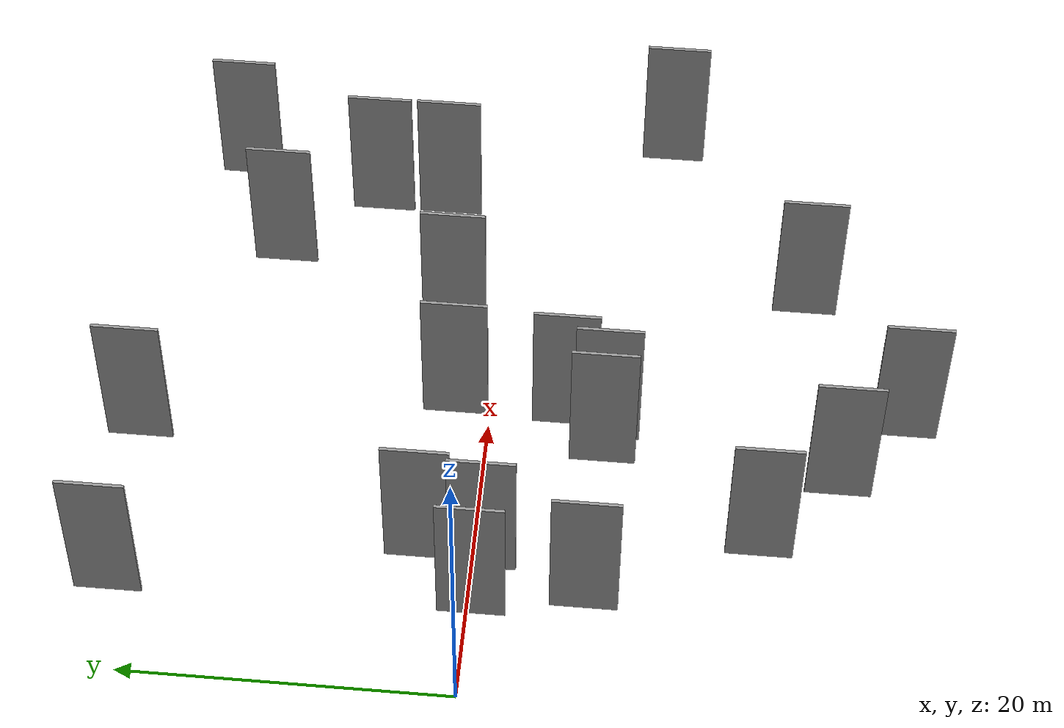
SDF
<sdf version="1.6">
 <world name="default">
  <scene>
   <sky><clouds><speed>12</speed></clouds></sky>
   <ambient>0.4 0.4 0.4 1</ambient>
   <background>0.7 0.7 0.7 1</background>
   <shadows>1</shadows>
  </scene>
  <gravity>0 0 -9.8066</gravity>
  <magnetic_field>6e-06 2.3e-05 -4.2e-05</magnetic_field>
  <physics default="0" name="default_physics" type="ode">
   <ode>
    <solver>
     <type>quick</type>
     <iters>10</iters>
     <sor>1.0</sor>
     <use_dynamic_moi_rescaling>0</use_dynamic_moi_rescaling>
    </solver>
    <constraints>
     <cfm>0</cfm>
     <erp>0.2</erp>
     <contact_max_correcting_vel>100</contact_max_correcting_vel>
     <contact_surface_layer>0.001</contact_surface_layer>
    </constraints>
   </ode>
   <max_step_size>0.004</max_step_size>
   <real_time_factor>1</real_time_factor>
   <real_time_update_rate>250</real_time_update_rate>
  </physics>
  <light name="sun" type="directional">
   <pose>0 0 10 0 0 0</pose>
   <diffuse>0.8 0.8 0.8 1</diffuse>
   <specular>0.2 0.2 0.2 1</specular>
   <attenuation>
    <range>1000</range>
    <constant>0.9</constant>
    <linear>0.01</linear>
    <quadratic>0.001</quadratic>
   </attenuation>
   <direction>-0.5 0.1 -0.9</direction>
  </light>
  <model name="grey_wall_1">
   <static>1</static>
   <pose>17.9819 -7.4302 2.5 0.000000 0.000000 1.570796</pose>
   <link name="link">
    <pose>0 0 5.00 0 0 0</pose>
    <collision name="collision"><geometry><box><size>4.00 0.2 10.00</size></box></geometry></collision>
    <visual name="visual">
     <cast_shadows>0</cast_shadows>
     <geometry><box><size>4.00 0.2 10.00</size></box></geometry>
     <material>
      <script>
       <uri>model://grey_wall/materials/scripts</uri>
       <uri>model://grey_wall/materials/textures</uri>
       <name>vrc/grey_wall</name>
      </script>
     </material>
    </visual>
   </link>
  </model>
  <model name="grey_wall_2">
   <static>1</static>
   <pose>26.2540 2.7320 2.5 0.000000 0.000000 1.570796</pose>
   <link name="link">
    <pose>0 0 5.00 0 0 0</pose>
    <collision name="collision"><geometry><box><size>4.00 0.2 10.00</size></box></geometry></collision>
    <visual name="visual">
     <cast_shadows>0</cast_shadows>
     <geometry><box><size>4.00 0.2 10.00</size></box></geometry>
     <material>
      <script>
       <uri>model://grey_wall/materials/scripts</uri>
       <uri>model://grey_wall/materials/textures</uri>
       <name>vrc/grey_wall</name>
      </script>
     </material>
    </visual>
   </link>
  </model>
  <model name="grey_wall_3">
   <static>1</static>
   <pose>7.5786 -0.8188 2.5 0.000000 0.000000 1.570796</pose>
   <link name="link">
    <pose>0 0 5.00 0 0 0</pose>
    <collision name="collision"><geometry><box><size>4.00 0.2 10.00</size></box></geometry></collision>
    <visual name="visual">
     <cast_shadows>0</cast_shadows>
     <geometry><box><size>4.00 0.2 10.00</size></box></geometry>
     <material>
      <script>
       <uri>model://grey_wall/materials/scripts</uri>
       <uri>model://grey_wall/materials/textures</uri>
       <name>vrc/grey_wall</name>
      </script>
     </material>
    </visual>
   </link>
  </model>
  <model name="grey_wall_4">
   <static>1</static>
   <pose>19.1340 1.9223 2.5 0.000000 0.000000 1.570796</pose>
   <link name="link">
    <pose>0 0 5.00 0 0 0</pose>
    <collision name="collision"><geometry><box><size>4.00 0.2 10.00</size></box></geometry></collision>
    <visual name="visual">
     <cast_shadows>0</cast_shadows>
     <geometry><box><size>4.00 0.2 10.00</size></box></geometry>
     <material>
      <script>
       <uri>model://grey_wall/materials/scripts</uri>
       <uri>model://grey_wall/materials/textures</uri>
       <name>vrc/grey_wall</name>
      </script>
     </material>
    </visual>
   </link>
  </model>
  <model name="grey_wall_5">
   <static>1</static>
   <pose>35.7650 3.9659 2.5 0.000000 0.000000 1.570796</pose>
   <link name="link">
    <pose>0 0 5.00 0 0 0</pose>
    <collision name="collision"><geometry><box><size>4.00 0.2 10.00</size></box></geometry></collision>
    <visual name="visual">
     <cast_shadows>0</cast_shadows>
     <geometry><box><size>4.00 0.2 10.00</size></box></geometry>
     <material>
      <script>
       <uri>model://grey_wall/materials/scripts</uri>
       <uri>model://grey_wall/materials/textures</uri>
       <name>vrc/grey_wall</name>
      </script>
     </material>
    </visual>
   </link>
  </model>
  <model name="grey_wall_6">
   <static>1</static>
   <pose>9.9656 -16.9954 2.5 0.000000 0.000000 1.570796</pose>
   <link name="link">
    <pose>0 0 5.00 0 0 0</pose>
    <collision name="collision"><geometry><box><size>4.00 0.2 10.00</size></box></geometry></collision>
    <visual name="visual">
     <cast_shadows>0</cast_shadows>
     <geometry><box><size>4.00 0.2 10.00</size></box></geometry>
     <material>
      <script>
       <uri>model://grey_wall/materials/scripts</uri>
       <uri>model://grey_wall/materials/textures</uri>
       <name>vrc/grey_wall</name>
      </script>
     </material>
    </visual>
   </link>
  </model>
  <model name="grey_wall_7">
   <static>1</static>
   <pose>4.3015 -0.4936 2.5 0.000000 0.000000 1.570796</pose>
   <link name="link">
    <pose>0 0 5.00 0 0 0</pose>
    <collision name="collision"><geometry><box><size>4.00 0.2 10.00</size></box></geometry></collision>
    <visual name="visual">
     <cast_shadows>0</cast_shadows>
     <geometry><box><size>4.00 0.2 10.00</size></box></geometry>
     <material>
      <script>
       <uri>model://grey_wall/materials/scripts</uri>
       <uri>model://grey_wall/materials/textures</uri>
       <name>vrc/grey_wall</name>
      </script>
     </material>
    </visual>
   </link>
  </model>
  <model name="grey_wall_8">
   <static>1</static>
   <pose>8.0327 3.0048 2.5 0.000000 0.000000 1.570796</pose>
   <link name="link">
    <pose>0 0 5.00 0 0 0</pose>
    <collision name="collision"><geometry><box><size>4.00 0.2 10.00</size></box></geometry></collision>
    <visual name="visual">
     <cast_shadows>0</cast_shadows>
     <geometry><box><size>4.00 0.2 10.00</size></box></geometry>
     <material>
      <script>
       <uri>model://grey_wall/materials/scripts</uri>
       <uri>model://grey_wall/materials/textures</uri>
       <name>vrc/grey_wall</name>
      </script>
     </material>
    </visual>
   </link>
  </model>
  <model name="grey_wall_9">
   <static>1</static>
   <pose>18.8699 -4.8284 2.5 0.000000 0.000000 1.570796</pose>
   <link name="link">
    <pose>0 0 5.00 0 0 0</pose>
    <collision name="collision"><geometry><box><size>4.00 0.2 10.00</size></box></geometry></collision>
    <visual name="visual">
     <cast_shadows>0</cast_shadows>
     <geometry><box><size>4.00 0.2 10.00</size></box></geometry>
     <material>
      <script>
       <uri>model://grey_wall/materials/scripts</uri>
       <uri>model://grey_wall/materials/textures</uri>
       <name>vrc/grey_wall</name>
      </script>
     </material>
    </visual>
   </link>
  </model>
  <model name="grey_wall_10">
   <static>1</static>
   <pose>16.1311 -7.2977 2.5 0.000000 0.000000 1.570796</pose>
   <link name="link">
    <pose>0 0 5.00 0 0 0</pose>
    <collision name="collision"><geometry><box><size>4.00 0.2 10.00</size></box></geometry></collision>
    <visual name="visual">
     <cast_shadows>0</cast_shadows>
     <geometry><box><size>4.00 0.2 10.00</size></box></geometry>
     <material>
      <script>
       <uri>model://grey_wall/materials/scripts</uri>
       <uri>model://grey_wall/materials/textures</uri>
       <name>vrc/grey_wall</name>
      </script>
     </material>
    </visual>
   </link>
  </model>
  <model name="grey_wall_11">
   <static>1</static>
   <pose>15.5418 20.9230 2.5 0.000000 0.000000 1.570796</pose>
   <link name="link">
    <pose>0 0 5.00 0 0 0</pose>
    <collision name="collision"><geometry><box><size>4.00 0.2 10.00</size></box></geometry></collision>
    <visual name="visual">
     <cast_shadows>0</cast_shadows>
     <geometry><box><size>4.00 0.2 10.00</size></box></geometry>
     <material>
      <script>
       <uri>model://grey_wall/materials/scripts</uri>
       <uri>model://grey_wall/materials/textures</uri>
       <name>vrc/grey_wall</name>
      </script>
     </material>
    </visual>
   </link>
  </model>
  <model name="grey_wall_12">
   <static>1</static>
   <pose>30.6517 14.0721 2.5 0.000000 0.000000 1.570796</pose>
   <link name="link">
    <pose>0 0 5.00 0 0 0</pose>
    <collision name="collision"><geometry><box><size>4.00 0.2 10.00</size></box></geometry></collision>
    <visual name="visual">
     <cast_shadows>0</cast_shadows>
     <geometry><box><size>4.00 0.2 10.00</size></box></geometry>
     <material>
      <script>
       <uri>model://grey_wall/materials/scripts</uri>
       <uri>model://grey_wall/materials/textures</uri>
       <name>vrc/grey_wall</name>
      </script>
     </material>
    </visual>
   </link>
  </model>
  <model name="grey_wall_13">
   <static>1</static>
   <pose>38.2051 17.3621 2.5 0.000000 0.000000 1.570796</pose>
   <link name="link">
    <pose>0 0 5.00 0 0 0</pose>
    <collision name="collision"><geometry><box><size>4.00 0.2 10.00</size></box></geometry></collision>
    <visual name="visual">
     <cast_shadows>0</cast_shadows>
     <geometry><box><size>4.00 0.2 10.00</size></box></geometry>
     <material>
      <script>
       <uri>model://grey_wall/materials/scripts</uri>
       <uri>model://grey_wall/materials/textures</uri>
       <name>vrc/grey_wall</name>
      </script>
     </material>
    </visual>
   </link>
  </model>
  <model name="grey_wall_14">
   <static>1</static>
   <pose>19.7613 -25.5231 2.5 0.000000 0.000000 1.570796</pose>
   <link name="link">
    <pose>0 0 5.00 0 0 0</pose>
    <collision name="collision"><geometry><box><size>4.00 0.2 10.00</size></box></geometry></collision>
    <visual name="visual">
     <cast_shadows>0</cast_shadows>
     <geometry><box><size>4.00 0.2 10.00</size></box></geometry>
     <material>
      <script>
       <uri>model://grey_wall/materials/scripts</uri>
       <uri>model://grey_wall/materials/textures</uri>
       <name>vrc/grey_wall</name>
      </script>
     </material>
    </visual>
   </link>
  </model>
  <model name="grey_wall_15">
   <static>1</static>
   <pose>4.0378 20.8242 2.5 0.000000 0.000000 1.570796</pose>
   <link name="link">
    <pose>0 0 5.00 0 0 0</pose>
    <collision name="collision"><geometry><box><size>4.00 0.2 10.00</size></box></geometry></collision>
    <visual name="visual">
     <cast_shadows>0</cast_shadows>
     <geometry><box><size>4.00 0.2 10.00</size></box></geometry>
     <material>
      <script>
       <uri>model://grey_wall/materials/scripts</uri>
       <uri>model://grey_wall/materials/textures</uri>
       <name>vrc/grey_wall</name>
      </script>
     </material>
    </visual>
   </link>
  </model>
  <model name="grey_wall_16">
   <static>1</static>
   <pose>41.9576 -10.2538 2.5 0.000000 0.000000 1.570796</pose>
   <link name="link">
    <pose>0 0 5.00 0 0 0</pose>
    <collision name="collision"><geometry><box><size>4.00 0.2 10.00</size></box></geometry></collision>
    <visual name="visual">
     <cast_shadows>0</cast_shadows>
     <geometry><box><size>4.00 0.2 10.00</size></box></geometry>
     <material>
      <script>
       <uri>model://grey_wall/materials/scripts</uri>
       <uri>model://grey_wall/materials/textures</uri>
       <name>vrc/grey_wall</name>
      </script>
     </material>
    </visual>
   </link>
  </model>
  <model name="grey_wall_17">
   <static>1</static>
   <pose>35.7203 8.3388 2.5 0.000000 0.000000 1.570796</pose>
   <link name="link">
    <pose>0 0 5.00 0 0 0</pose>
    <collision name="collision"><geometry><box><size>4.00 0.2 10.00</size></box></geometry></collision>
    <visual name="visual">
     <cast_shadows>0</cast_shadows>
     <geometry><box><size>4.00 0.2 10.00</size></box></geometry>
     <material>
      <script>
       <uri>model://grey_wall/materials/scripts</uri>
       <uri>model://grey_wall/materials/textures</uri>
       <name>vrc/grey_wall</name>
      </script>
     </material>
    </visual>
   </link>
  </model>
  <model name="grey_wall_18">
   <static>1</static>
   <pose>14.9230 -21.5881 2.5 0.000000 0.000000 1.570796</pose>
   <link name="link">
    <pose>0 0 5.00 0 0 0</pose>
    <collision name="collision"><geometry><box><size>4.00 0.2 10.00</size></box></geometry></collision>
    <visual name="visual">
     <cast_shadows>0</cast_shadows>
     <geometry><box><size>4.00 0.2 10.00</size></box></geometry>
     <material>
      <script>
       <uri>model://grey_wall/materials/scripts</uri>
       <uri>model://grey_wall/materials/textures</uri>
       <name>vrc/grey_wall</name>
      </script>
     </material>
    </visual>
   </link>
  </model>
  <model name="grey_wall_19">
   <static>1</static>
   <pose>29.2010 -19.2537 2.5 0.000000 0.000000 1.570796</pose>
   <link name="link">
    <pose>0 0 5.00 0 0 0</pose>
    <collision name="collision"><geometry><box><size>4.00 0.2 10.00</size></box></geometry></collision>
    <visual name="visual">
     <cast_shadows>0</cast_shadows>
     <geometry><box><size>4.00 0.2 10.00</size></box></geometry>
     <material>
      <script>
       <uri>model://grey_wall/materials/scripts</uri>
       <uri>model://grey_wall/materials/textures</uri>
       <name>vrc/grey_wall</name>
      </script>
     </material>
    </visual>
   </link>
  </model>
  <model name="grey_wall_20">
   <static>1</static>
   <pose>5.2910 -6.9708 2.5 0.000000 0.000000 1.570796</pose>
   <link name="link">
    <pose>0 0 5.00 0 0 0</pose>
    <collision name="collision"><geometry><box><size>4.00 0.2 10.00</size></box></geometry></collision>
    <visual name="visual">
     <cast_shadows>0</cast_shadows>
     <geometry><box><size>4.00 0.2 10.00</size></box></geometry>
     <material>
      <script>
       <uri>model://grey_wall/materials/scripts</uri>
       <uri>model://grey_wall/materials/textures</uri>
       <name>vrc/grey_wall</name>
      </script>
     </material>
    </visual>
   </link>
  </model>
 </world>
</sdf>
